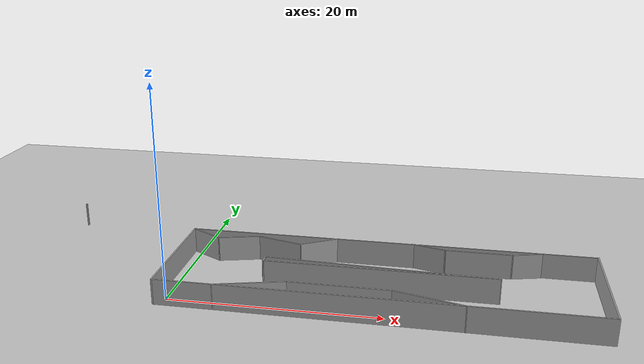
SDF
<sdf version="1.6">
 <world name="default">
  <light name="sun" type="directional">
   <pose>0 0 10 0 -0 0</pose>
   <diffuse>0.8 0.8 0.8 1</diffuse>
   <specular>0.2 0.2 0.2 1</specular>
   <attenuation>
    <range>1000</range>
    <constant>0.9</constant>
    <linear>0.01</linear>
    <quadratic>0.001</quadratic>
   </attenuation>
   <direction>-0.5 0.1 -0.9</direction>
  </light>
  <model name="ground_plane">
   <static>1</static>
   <link name="link">
    <collision name="collision">
     <geometry><plane><normal>0 0 1</normal><size>100 100</size></plane></geometry>
     <surface><friction><ode><mu>100</mu><mu2>50</mu2></ode></friction></surface>
    </collision>
    <visual name="visual">
     <cast_shadows>0</cast_shadows>
     <geometry><plane><normal>0 0 1</normal><size>100 100</size></plane></geometry>
     <material>
      <script><uri>file://media/materials/scripts/gazebo.material</uri><name>Gazebo/Grey</name></script>
     </material>
    </visual>
   </link>
  </model>
  <gravity>0 0 -9.8</gravity>
  <magnetic_field>6e-06 2.3e-05 -4.2e-05</magnetic_field>
  <atmosphere type="adiabatic"/>
  <physics name="default_physics" default="0" type="ode">
   <max_step_size>0.001</max_step_size>
   <real_time_factor>1</real_time_factor>
   <real_time_update_rate>1000</real_time_update_rate>
  </physics>
  <scene><ambient>0.4 0.4 0.4 1</ambient><background>0.7 0.7 0.7 1</background><shadows>1</shadows></scene>
  <audio><device>default</device></audio>
  <spherical_coordinates>
   <surface_model>EARTH_WGS84</surface_model>
   <latitude_deg>0</latitude_deg>
   <longitude_deg>0</longitude_deg>
   <elevation>0</elevation>
   <heading_deg>0</heading_deg>
  </spherical_coordinates>
  <model name="Untitled">
   <pose>12.0017 7.18319 0 0 -0 0</pose>
   <link name="Wall_12">
    <collision name="Wall_12_Collision">
     <geometry><box><size>40 0.15 2.5</size></box></geometry>
     <pose>0 0 1.25 0 -0 0</pose>
    </collision>
    <visual name="Wall_12_Visual">
     <pose>0 0 1.25 0 -0 0</pose>
     <geometry><box><size>40 0.15 2.5</size></box></geometry>
     <material>
      <script><uri>file://media/materials/scripts/gazebo.material</uri><name>Gazebo/Grey</name></script>
      <ambient>1 1 1 1</ambient>
     </material>
     <meta><layer>0</layer></meta>
    </visual>
    <pose>7.10984 3.64121 0 0 -0 0</pose>
   </link>
   <link name="Wall_13">
    <collision name="Wall_13_Collision">
     <geometry><box><size>12 0.15 2.5</size></box></geometry>
     <pose>0 0 1.25 0 -0 0</pose>
    </collision>
    <visual name="Wall_13_Visual">
     <pose>0 0 1.25 0 -0 0</pose>
     <geometry><box><size>12 0.15 2.5</size></box></geometry>
     <material>
      <script><uri>file://media/materials/scripts/gazebo.material</uri><name>Gazebo/Grey</name></script>
      <ambient>1 1 1 1</ambient>
     </material>
     <meta><layer>0</layer></meta>
    </visual>
    <pose>27.0348 -2.28379 0 0 -0 -1.5708</pose>
   </link>
   <link name="Wall_14">
    <collision name="Wall_14_Collision">
     <geometry><box><size>40 0.15 2.5</size></box></geometry>
     <pose>0 0 1.25 0 -0 0</pose>
    </collision>
    <visual name="Wall_14_Visual">
     <pose>0 0 1.25 0 -0 0</pose>
     <geometry><box><size>40 0.15 2.5</size></box></geometry>
     <material>
      <script><uri>file://media/materials/scripts/gazebo.material</uri><name>Gazebo/Grey</name></script>
      <ambient>1 1 1 1</ambient>
     </material>
     <meta><layer>0</layer></meta>
    </visual>
    <pose>7.10984 -8.20879 0 0 -0 3.14159</pose>
   </link>
   <link name="Wall_15">
    <collision name="Wall_15_Collision">
     <geometry><box><size>12 0.15 2.5</size></box></geometry>
     <pose>0 0 1.25 0 -0 0</pose>
    </collision>
    <visual name="Wall_15_Visual">
     <pose>0 0 1.25 0 -0 0</pose>
     <geometry><box><size>12 0.15 2.5</size></box></geometry>
     <material>
      <script><uri>file://media/materials/scripts/gazebo.material</uri><name>Gazebo/Grey</name></script>
      <ambient>1 1 1 1</ambient>
     </material>
     <meta><layer>0</layer></meta>
    </visual>
    <pose>-12.8152 -2.28379 0 0 -0 1.5708</pose>
   </link>
   <link name="Wall_16">
    <collision name="Wall_16_Collision">
     <geometry><box><size>3.75 0.15 2.5</size></box></geometry>
     <pose>0 0 1.25 0 -0 0</pose>
    </collision>
    <visual name="Wall_16_Visual">
     <pose>0 0 1.25 0 -0 0</pose>
     <geometry><box><size>3.75 0.15 2.5</size></box></geometry>
     <material>
      <script><uri>file://media/materials/scripts/gazebo.material</uri><name>Gazebo/Grey</name></script>
      <ambient>1 1 1 1</ambient>
     </material>
     <meta><layer>0</layer></meta>
    </visual>
    <pose>-11.2563 2.74121 0 0 -0 -0.523599</pose>
   </link>
   <link name="Wall_17">
    <collision name="Wall_17_Collision">
     <geometry><box><size>4.25 0.15 2.5</size></box></geometry>
     <pose>0 0 1.25 0 -0 0</pose>
    </collision>
    <visual name="Wall_17_Visual">
     <pose>0 0 1.25 0 -0 0</pose>
     <geometry><box><size>4.25 0.15 2.5</size></box></geometry>
     <material>
      <script><uri>file://media/materials/scripts/gazebo.material</uri><name>Gazebo/Grey</name></script>
      <ambient>1 1 1 1</ambient>
     </material>
     <meta><layer>0</layer></meta>
    </visual>
    <pose>-7.71732 2.37179 0 0 -0 0.261799</pose>
   </link>
   <link name="Wall_18">
    <collision name="Wall_18_Collision">
     <geometry><box><size>4.75 0.15 2.5</size></box></geometry>
     <pose>0 0 1.25 0 -0 0</pose>
    </collision>
    <visual name="Wall_18_Visual">
     <pose>0 0 1.25 0 -0 0</pose>
     <geometry><box><size>4.75 0.15 2.5</size></box></geometry>
     <material>
      <script><uri>file://media/materials/scripts/gazebo.material</uri><name>Gazebo/Grey</name></script>
      <ambient>1 1 1 1</ambient>
     </material>
     <meta><layer>0</layer></meta>
    </visual>
    <pose>-3.51554 2.30709 0 0 -0 -0.261799</pose>
   </link>
   <link name="Wall_19">
    <collision name="Wall_19_Collision">
     <geometry><box><size>4 0.15 2.5</size></box></geometry>
     <pose>0 0 1.25 0 -0 0</pose>
    </collision>
    <visual name="Wall_19_Visual">
     <pose>0 0 1.25 0 -0 0</pose>
     <geometry><box><size>4 0.15 2.5</size></box></geometry>
     <material>
      <script><uri>file://media/materials/scripts/gazebo.material</uri><name>Gazebo/Grey</name></script>
      <ambient>1 1 1 1</ambient>
     </material>
     <meta><layer>0</layer></meta>
    </visual>
    <pose>0.373185 2.6743 0 0 -0 0.523599</pose>
   </link>
   <link name="Wall_21">
    <collision name="Wall_21_Collision">
     <geometry><box><size>6.75 0.15 2.5</size></box></geometry>
     <pose>0 0 1.25 0 -0 0</pose>
    </collision>
    <visual name="Wall_21_Visual">
     <pose>0 0 1.25 0 -0 0</pose>
     <geometry><box><size>6.75 0.15 2.5</size></box></geometry>
     <material>
      <script><uri>file://media/materials/scripts/gazebo.material</uri><name>Gazebo/Grey</name></script>
      <ambient>1 1 1 1</ambient>
     </material>
     <meta><layer>0</layer></meta>
    </visual>
    <pose>-4.0351 -7.35783 0 0 -0 0.261799</pose>
   </link>
   <link name="Wall_22">
    <collision name="Wall_22_Collision">
     <geometry><box><size>9.5 0.15 2.5</size></box></geometry>
     <pose>0 0 1.25 0 -0 0</pose>
    </collision>
    <visual name="Wall_22_Visual">
     <pose>0 0 1.25 0 -0 0</pose>
     <geometry><box><size>9.5 0.15 2.5</size></box></geometry>
     <material>
      <script><uri>file://media/materials/scripts/gazebo.material</uri><name>Gazebo/Grey</name></script>
      <ambient>1 1 1 1</ambient>
     </material>
     <meta><layer>0</layer></meta>
    </visual>
    <pose>3.82746 -6.50373 0 0 -0 0</pose>
   </link>
   <link name="Wall_23">
    <collision name="Wall_23_Collision">
     <geometry><box><size>6.75 0.15 2.5</size></box></geometry>
     <pose>0 0 1.25 0 -0 0</pose>
    </collision>
    <visual name="Wall_23_Visual">
     <pose>0 0 1.25 0 -0 0</pose>
     <geometry><box><size>6.75 0.15 2.5</size></box></geometry>
     <material>
      <script><uri>file://media/materials/scripts/gazebo.material</uri><name>Gazebo/Grey</name></script>
      <ambient>1 1 1 1</ambient>
     </material>
     <meta><layer>0</layer></meta>
    </visual>
    <pose>11.69 -7.35783 0 0 -0 -0.261799</pose>
   </link>
   <link name="Wall_25">
    <collision name="Wall_25_Collision">
     <geometry><box><size>3.5 0.15 2.5</size></box></geometry>
     <pose>0 0 1.25 0 -0 0</pose>
    </collision>
    <visual name="Wall_25_Visual">
     <pose>0 0 1.25 0 -0 0</pose>
     <geometry><box><size>3.5 0.15 2.5</size></box></geometry>
     <material>
      <script><uri>file://media/materials/scripts/gazebo.material</uri><name>Gazebo/Grey</name></script>
      <ambient>1 1 1 1</ambient>
     </material>
     <meta><layer>0</layer></meta>
    </visual>
    <pose>11.1233 3.25718 0 0 -0 -0.261799</pose>
   </link>
   <link name="Wall_26">
    <collision name="Wall_26_Collision">
     <geometry><box><size>6.5 0.15 2.5</size></box></geometry>
     <pose>0 0 1.25 0 -0 0</pose>
    </collision>
    <visual name="Wall_26_Visual">
     <pose>0 0 1.25 0 -0 0</pose>
     <geometry><box><size>6.5 0.15 2.5</size></box></geometry>
     <material>
      <script><uri>file://media/materials/scripts/gazebo.material</uri><name>Gazebo/Grey</name></script>
      <ambient>1 1 1 1</ambient>
     </material>
     <meta><layer>0</layer></meta>
    </visual>
    <pose>15.9162 2.82366 0 0 -0 0</pose>
   </link>
   <link name="Wall_27">
    <collision name="Wall_27_Collision">
     <geometry><box><size>3 0.15 2.5</size></box></geometry>
     <pose>0 0 1.25 0 -0 0</pose>
    </collision>
    <visual name="Wall_27_Visual">
     <pose>0 0 1.25 0 -0 0</pose>
     <geometry><box><size>3 0.15 2.5</size></box></geometry>
     <material>
      <script><uri>file://media/materials/scripts/gazebo.material</uri><name>Gazebo/Grey</name></script>
      <ambient>1 1 1 1</ambient>
     </material>
     <meta><layer>0</layer></meta>
    </visual>
    <pose>20.4677 3.19248 0 0 -0 0.261799</pose>
   </link>
   <link name="Wall_29">
    <collision name="Wall_29_Collision">
     <geometry><box><size>1 0.15 2.5</size></box></geometry>
     <pose>0 0 1.25 0 -0 0</pose>
    </collision>
    <visual name="Wall_29_Visual">
     <pose>0 0 1.25 0 -0 0</pose>
     <geometry><box><size>1 0.15 2.5</size></box></geometry>
     <material>
      <script><uri>file://media/materials/scripts/gazebo.material</uri><name>Gazebo/Grey</name></script>
      <ambient>1 1 1 1</ambient>
     </material>
     <meta><layer>0</layer></meta>
    </visual>
    <pose>-3.99621 -2.18292 0 0 -0 -1.5708</pose>
   </link>
   <link name="Wall_30">
    <collision name="Wall_30_Collision">
     <geometry><box><size>22 0.15 2.5</size></box></geometry>
     <pose>0 0 1.25 0 -0 0</pose>
    </collision>
    <visual name="Wall_30_Visual">
     <pose>0 0 1.25 0 -0 0</pose>
     <geometry><box><size>22 0.15 2.5</size></box></geometry>
     <material>
      <script><uri>file://media/materials/scripts/gazebo.material</uri><name>Gazebo/Grey</name></script>
      <ambient>1 1 1 1</ambient>
     </material>
     <meta><layer>0</layer></meta>
    </visual>
    <pose>6.92879 -2.60792 0 0 -0 0</pose>
   </link>
   <link name="Wall_31">
    <collision name="Wall_31_Collision">
     <geometry><box><size>22.0165 0.15 2.5</size></box></geometry>
     <pose>0 0 1.25 0 -0 0</pose>
    </collision>
    <visual name="Wall_31_Visual">
     <pose>0 0 1.25 0 -0 0</pose>
     <geometry><box><size>22.0165 0.15 2.5</size></box></geometry>
     <material>
      <script><uri>file://media/materials/scripts/gazebo.material</uri><name>Gazebo/Grey</name></script>
      <ambient>1 1 1 1</ambient>
     </material>
     <meta><layer>0</layer></meta>
    </visual>
    <pose>6.92879 -2.18292 0 0 -0 3.10271</pose>
   </link>
   <link name="Wall_9">
    <collision name="Wall_9_Collision">
     <geometry><box><size>0.15 0.15 2.5</size></box></geometry>
     <pose>0 0 1.25 0 -0 0</pose>
    </collision>
    <visual name="Wall_9_Visual">
     <pose>0 0 1.25 0 -0 0</pose>
     <geometry><box><size>0.15 0.15 2.5</size></box></geometry>
     <material>
      <script><uri>file://media/materials/scripts/gazebo.material</uri><name>Gazebo/Grey</name></script>
      <ambient>1 1 1 1</ambient>
     </material>
     <meta><layer>0</layer></meta>
    </visual>
    <pose>-27.0348 8.22879 0 0 -0 0</pose>
   </link>
   <static>1</static>
  </model>
 </world>
</sdf>
